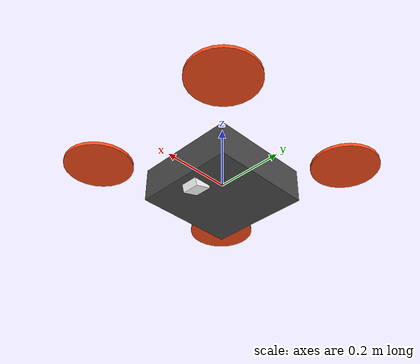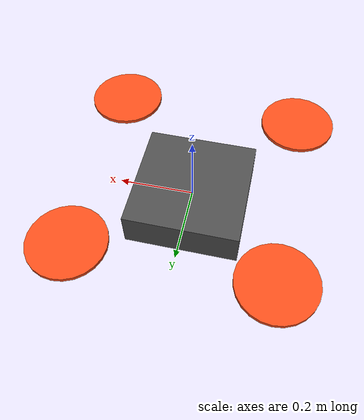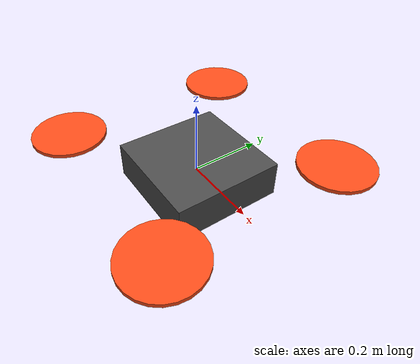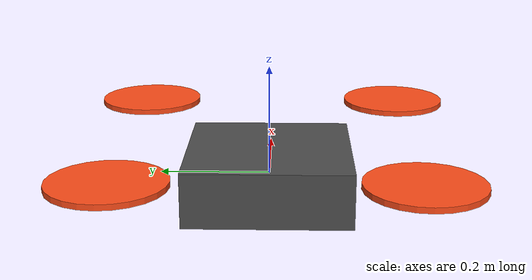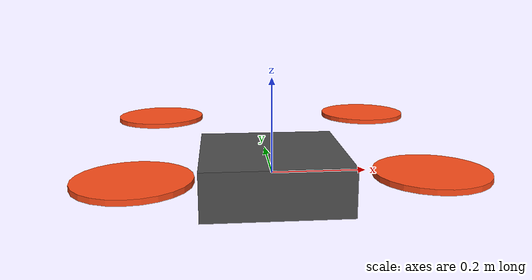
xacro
<?xml version="1.0"?>
<robot xmlns:xacro="http://www.ros.org/wiki/xacro" name="quadcopter">

    <xacro:include filename="inertial_formulas.xacro" />
    <xacro:include filename="materials.xacro" />
    <xacro:include filename="_drone_gazebo.xacro" />

    <!-- Drone properties -->
    <xacro:property name="body_width" value="0.3" />
    <xacro:property name="body_height" value="0.1" />
    <xacro:property name="arm_length" value="0.25" />
    <xacro:property name="arm_radius" value="0.02" />
    <xacro:property name="prop_radius" value="0.1" />
    <xacro:property name="prop_height" value="0.01" />

    <!-- Main body -->
    <link name="base_link">
        <visual>
            <origin xyz="0 0 0" rpy="0 0 0"/>
            <geometry>
                <box size="${body_width} ${body_width} ${body_height}" />
            </geometry>
            <material name="gray" />
        </visual>
        <collision>
            <origin xyz="0 0 0" rpy="0 0 0"/>
            <geometry>
                <box size="${body_width} ${body_width} ${body_height}" />
            </geometry>
        </collision>
        <xacro:inertial_box mass="1.5" x="${body_width}" y="${body_width}" z="${body_height}">
            <origin xyz="0 0 0" rpy="0 0 0"/>
        </xacro:inertial_box>
    </link>

    <!-- Front Right Propeller -->
    <link name="front_right_prop">
        <visual>
            <origin xyz="0 0 0" rpy="0 0 0"/>
            <geometry>
                <cylinder length="${prop_height}" radius="${prop_radius}" />
            </geometry>
            <material name="orange" />
        </visual>
        <collision>
            <origin xyz="0 0 0" rpy="0 0 0"/>
            <geometry>
                <cylinder length="${prop_height}" radius="${prop_radius}" />
            </geometry>
        </collision>
        <xacro:inertial_cylinder mass="0.05" length="${prop_height}" radius="${prop_radius}">
            <origin xyz="0 0 0" rpy="0 0 0"/>
        </xacro:inertial_cylinder>
    </link>

    <joint name="front_right_prop_joint" type="continuous">
        <parent link="base_link"/>
        <child link="front_right_prop"/>
        <origin xyz="${arm_length} ${arm_length} ${body_height/2 + 0.02}" rpy="0 0 0"/>
        <axis xyz="0 0 1"/>
    </joint>

    <!-- Front Left Propeller -->
    <link name="front_left_prop">
        <visual>
            <origin xyz="0 0 0" rpy="0 0 0"/>
            <geometry>
                <cylinder length="${prop_height}" radius="${prop_radius}" />
            </geometry>
            <material name="orange" />
        </visual>
        <collision>
            <origin xyz="0 0 0" rpy="0 0 0"/>
            <geometry>
                <cylinder length="${prop_height}" radius="${prop_radius}" />
            </geometry>
        </collision>
        <xacro:inertial_cylinder mass="0.05" length="${prop_height}" radius="${prop_radius}">
            <origin xyz="0 0 0" rpy="0 0 0"/>
        </xacro:inertial_cylinder>
    </link>

    <joint name="front_left_prop_joint" type="continuous">
        <parent link="base_link"/>
        <child link="front_left_prop"/>
        <origin xyz="${arm_length} ${-arm_length} ${body_height/2 + 0.02}" rpy="0 0 0"/>
        <axis xyz="0 0 1"/>
    </joint>

    <!-- Rear Left Propeller -->
    <link name="rear_left_prop">
        <visual>
            <origin xyz="0 0 0" rpy="0 0 0"/>
            <geometry>
                <cylinder length="${prop_height}" radius="${prop_radius}" />
            </geometry>
            <material name="orange" />
        </visual>
        <collision>
            <origin xyz="0 0 0" rpy="0 0 0"/>
            <geometry>
                <cylinder length="${prop_height}" radius="${prop_radius}" />
            </geometry>
        </collision>
        <xacro:inertial_cylinder mass="0.05" length="${prop_height}" radius="${prop_radius}">
            <origin xyz="0 0 0" rpy="0 0 0"/>
        </xacro:inertial_cylinder>
    </link>

    <joint name="rear_left_prop_joint" type="continuous">
        <parent link="base_link"/>
        <child link="rear_left_prop"/>
        <origin xyz="${-arm_length} ${-arm_length} ${body_height/2 + 0.02}" rpy="0 0 0"/>
        <axis xyz="0 0 1"/>
    </joint>

    <!-- Rear Right Propeller -->
    <link name="rear_right_prop">
        <visual>
            <origin xyz="0 0 0" rpy="0 0 0"/>
            <geometry>
                <cylinder length="${prop_height}" radius="${prop_radius}" />
            </geometry>
            <material name="orange" />
        </visual>
        <collision>
            <origin xyz="0 0 0" rpy="0 0 0"/>
            <geometry>
                <cylinder length="${prop_height}" radius="${prop_radius}" />
            </geometry>
        </collision>
        <xacro:inertial_cylinder mass="0.05" length="${prop_height}" radius="${prop_radius}">
            <origin xyz="0 0 0" rpy="0 0 0"/>
        </xacro:inertial_cylinder>
    </link>

    <joint name="rear_right_prop_joint" type="continuous">
        <parent link="base_link"/>
        <child link="rear_right_prop"/>
        <origin xyz="${-arm_length} ${arm_length} ${body_height/2 + 0.02}" rpy="0 0 0"/>
        <axis xyz="0 0 1"/>
    </joint>

    <!-- Camera gimbal - ADD COLLISION -->
    <joint name="camera_joint" type="fixed">
        <origin xyz="0.1 0 -0.05" rpy="0 0.3 0"/>
        <parent link="base_link"/>
        <child link="camera_link"/>
    </joint>

    <link name="camera_link">
        <visual>
            <origin xyz="0 0 0" rpy="0 0 0"/>
            <geometry>
                <box size="0.05 0.05 0.03" />
            </geometry>
            <material name="white" />
        </visual>
        <!-- ADD COLLISION - This is missing and needed for sensors -->
        <collision>
            <origin xyz="0 0 0" rpy="0 0 0"/>
            <geometry>
                <box size="0.05 0.05 0.03" />
            </geometry>
        </collision>
        <xacro:inertial_box mass="0.05" x="0.05" y="0.05" z="0.03">
            <origin xyz="0 0 0" rpy="0 0 0"/>
        </xacro:inertial_box>
    </link>

    <!-- IMU sensor link - ADD COLLISION -->
    <joint name="imu_joint" type="fixed">
        <origin xyz="0 0 0" rpy="0 0 0"/>
        <parent link="base_link"/>
        <child link="imu_link"/>
    </joint>

    <link name="imu_link">
        <visual>
            <origin xyz="0 0 0" rpy="0 0 0"/>
            <geometry>
                <box size="0.02 0.02 0.01" />
            </geometry>
            <material name="blue" />
        </visual>
        <!-- ADD COLLISION - This is missing and needed for sensors -->
        <collision>
            <origin xyz="0 0 0" rpy="0 0 0"/>
            <geometry>
                <box size="0.02 0.02 0.01" />
            </geometry>
        </collision>
        <xacro:inertial_box mass="0.01" x="0.02" y="0.02" z="0.01">
            <origin xyz="0 0 0" rpy="0 0 0"/>
        </xacro:inertial_box>
    </link>

</robot>

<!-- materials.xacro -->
<robot xmlns:xacro="http://www.ros.org/wiki/xacro" >

    <!-- This file is not a robot in and of itself, it just contains some useful tags that could be included in any robot -->

    <!-- Specify some colours -->

    <material name="white">
        <color rgba="1 1 1 1"/>
    </material>

    <material name="orange">
        <color rgba="1 0.3 0.1 1"/>
    </material>

    <material name="blue">
        <color rgba="0.2 0.2 1 1"/>
    </material>

    <material name="gray">
        <color rgba="0.3 0.3 0.3 1"/>
    </material>

</robot>
